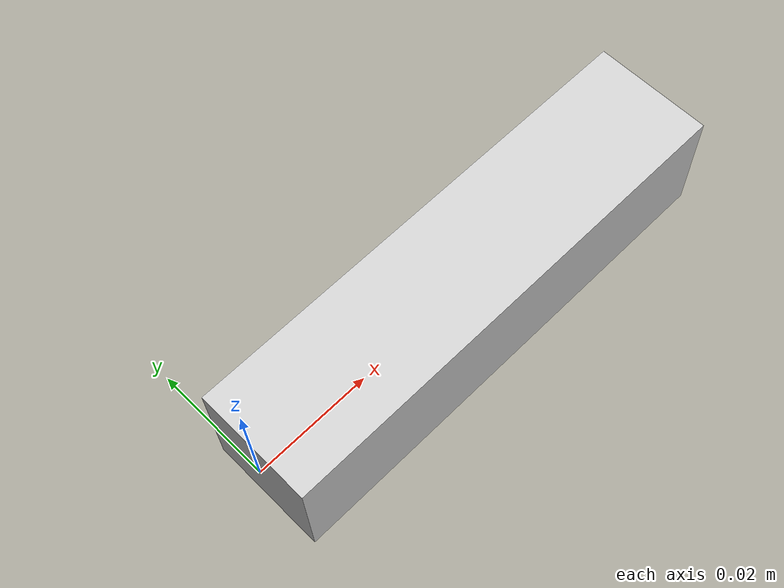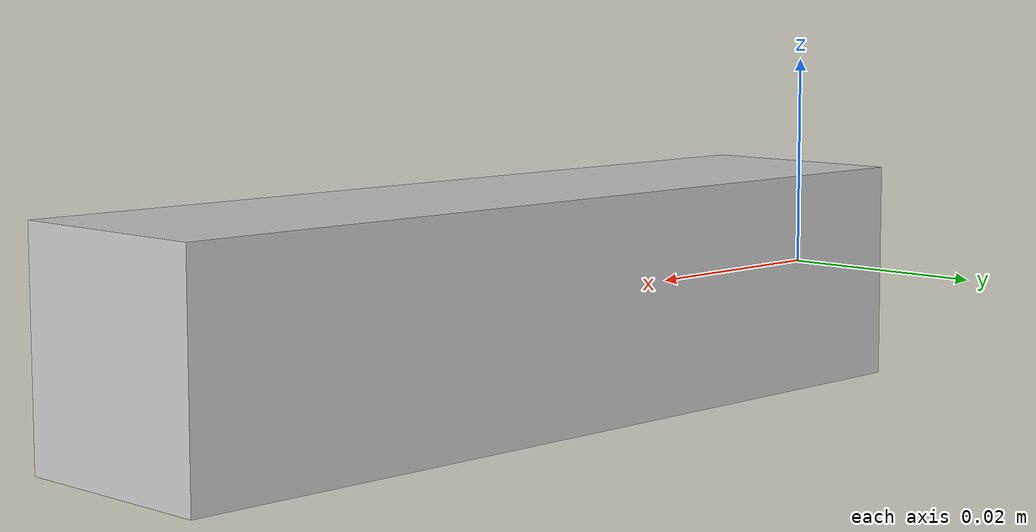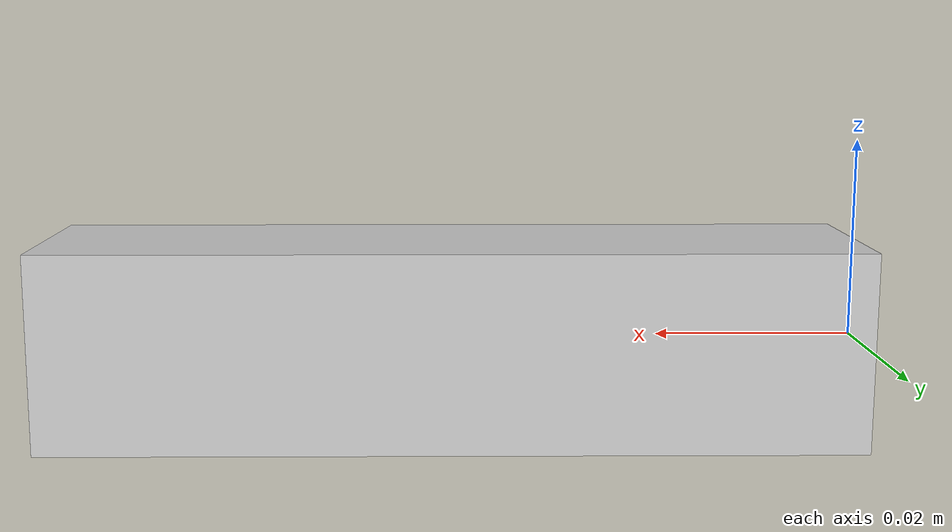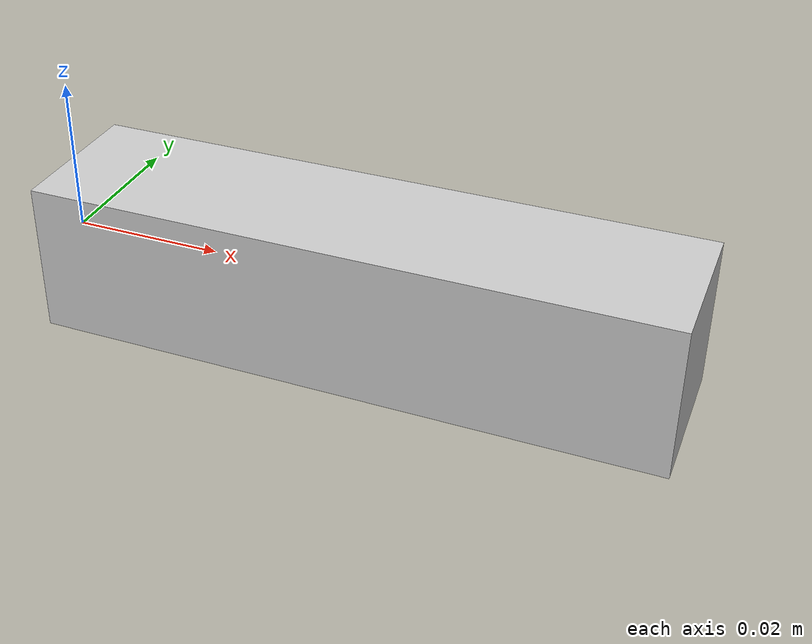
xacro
<?xml version="1.0"?>

<robot name="cepheus" xmlns:xacro="http://www.ros.org/wiki/xacro">
	<xacro:include filename="$(find cepheus_description)/urdf/cepheus.gazebo" />
	<xacro:include filename="$(find cepheus_description)/urdf/materials.xacro" />
	<xacro:include filename="$(find cepheus_description)/urdf/inertial_macros.xacro"/>
	<xacro:property name="camera_link" value="0.05" /> <!-- Size of square 'camera' box -->
	<xacro:property name="base_radius" value="0.2" />
	<xacro:property name="y" value="0.02" />
	<!-- gia sygkrish me simscape 29/7 -->
	<xacro:property name="arm_length" value="0.37" />
	<xacro:property name="forearm_length" value="0.368" />
	<xacro:property name="gripper_length" value="0.0822" />
	<xacro:property name="base_mass" value="53" />
	<xacro:property name="arm_mass" value="0.2314" />
	<xacro:property name="forearm_mass" value="0.1" />
	<xacro:property name="gripper_mass" value="4.6" />
	<xacro:property name="base_inertia" value="1.06" />
	<xacro:property name="arm_inertia" value="0.0026476" />
	<xacro:property name="forearm_inertia" value="0.0011318" />
	<xacro:property name="gripper_inertia" value="${2.73/1000}" />
	<xacro:property name="joint_damping" value="1" />
	<xacro:property name="joint_friction" value="1" />
	<xacro:property name="joint_limit" value="3.14" />
	<xacro:property name="joint_velocity" value="100000" />
	<xacro:property name="joint_effort" value="100000" />

	<!-- gia test epitagynshs: need fixing -->

	<link name="world">
	</link>
    	<joint name="p1_joint" type="prismatic">
		<parent link="world"/>
		<child link="p1"/>
		<axis xyz="1 0 0"/>
		<limit lower="-100" upper="100" effort="${joint_effort}" velocity="${joint_velocity}"/>
		<dynamics damping="${joint_damping}" friction="${joint_friction}"/>
	</joint>
	<link name="p1">
		<inertial>
			<origin
				xyz="0.0 0.0 0.0"
				rpy="0.0 0.0 0.0" />
			<mass value="0.01" />
			<inertia
				ixx="1e-2"
				ixy="0.000001"
				ixz="0.000001"
				iyy="1e-2"
				iyz="0.000001"
				izz="1e-2" />
		</inertial>
	</link>
	<gazebo reference="p1">
		<mu1>0</mu1>
		<mu2>0</mu2>
	</gazebo>
	<transmission name="lin1">
		<type>transmission_interface/SimpleTransmission</type>
		<joint name="p1_joint">
			<hardwareInterface>hardware_interface/EffortJointInterface</hardwareInterface>
		</joint>
		<actuator name="lin_motor1">
			<hardwareInterface>hardware_interface/EffortJointInterface</hardwareInterface>
			<mechanicalReduction>1</mechanicalReduction>
		</actuator>
	</transmission>
	<joint name="p2_joint" type="prismatic">
		<parent link="p1"/>
		<child link="p2"/>
		<axis xyz="0 1 0"/>
		<limit
			lower="-100"
			upper="100"
			effort="${joint_effort}"
			velocity="${joint_velocity}"/>
		<dynamics
			damping="${joint_damping}"
			friction="${joint_friction}"/>
	</joint>
	<link name="p2">
		<inertial>
			<origin
				xyz="0.0 0.0 0.0"
				rpy="0.0 0.0 0.0" />
			<mass value="0.01" />
			<inertia
				ixx="1e-2"
				ixy="0.000001"
				ixz="0.000001"
				iyy="1e-2"
				iyz="0.000001"
				izz="1e-2" />
		</inertial>
		<surface>
			<friction>
				<ode>
					<mu>0</mu>
					<mu2>0</mu2>
					<fdir1>0 1.0 0</fdir1>
					<implicit_spring_damper>true</implicit_spring_damper>
				</ode>
			</friction>
		</surface>
	</link>
	<gazebo reference="p2">
		<mu1>0</mu1>
		<mu2>0</mu2>
	</gazebo>
	<transmission name="lin2">
		<type>transmission_interface/SimpleTransmission</type>
		<joint name="p2_joint">
			<hardwareInterface>hardware_interface/EffortJointInterface</hardwareInterface>
		</joint>
		<actuator name="lin_motor2">
			<hardwareInterface>hardware_interface/EffortJointInterface</hardwareInterface>
			<mechanicalReduction>1</mechanicalReduction>
		</actuator>
	</transmission>
	<joint name="left_wrist_joint" type="continuous">
		<axis xyz="0 0 1"/>
		<parent link="p2"/>
		<origin rpy="0 0 0" xyz="0 0 0"/>
		<child link="left_grip"/>
		<dynamics damping="${joint_damping}" friction="${joint_friction}"/>
	</joint>
	<transmission name="tran1">
		<type>
			transmission_interface/SimpleTransmission</type>
		<joint name="left_wrist_joint">
			<hardwareInterface>hardware_interface/EffortJointInterface</hardwareInterface>
		</joint>
		<actuator name="motor1">
			<hardwareInterface>hardware_interface/EffortJointInterface</hardwareInterface>
			<mechanicalReduction>1</mechanicalReduction>
		</actuator>
	</transmission>

	<link name="left_grip">
		<inertial>
			<origin
				xyz="${gripper_length/2} 0 0"
				rpy="0 0 0" />
			<mass value="${gripper_mass}" />
			<inertia
				ixx="0.0001"
				ixy="0.0001"
				ixz="0.0001"
				iyy="0.0001"
				iyz="0.0001"
				izz="${gripper_inertia}" />
		</inertial>
		<visual>
			<origin
				xyz="${gripper_length/2} 0 0"
				rpy="0 0 0" />
			<geometry>
				<box size="${gripper_length} 0.02 0.02"/>
			</geometry>
			<material name="LightGrey"/>
		</visual>
		<collision>
			<origin
				xyz="${gripper_length/2} 0 0"
				rpy="0 0 0" />
			<geometry>
				<box size="${gripper_length} 0.02 0.02"/>
			</geometry>
		</collision>
	</link>
    <gazebo reference="left_grip">
		<mu1>0</mu1>
		<mu2>0</mu2>
	</gazebo>
	<joint name="final_joint" type="revolute">
		<parent link="left_grip"/>
		<child link="final_link"/>
		<origin
			xyz="${gripper_length} 0 0"
			rpy="0 0 0 " />
		<axis xyz="0 1 0"/>
		<limit lower="-1" upper="1" effort="${joint_effort}" velocity="${joint_velocity}"/>
		<dynamics damping="1" friction="1"/>
	</joint>
	<link name="final_link">
		<inertial>
			<origin
				xyz="0.0 0.0 0.0"
				rpy="0.0 0.0 0.0" />
			<mass value="0.0001" />
			<inertia
				ixx="1e-7"
				ixy="0.00001"
				ixz="0.00001"
				iyy="1e-7"
				iyz="0.00001"
				izz="1e-7" />
		</inertial>
	</link>

	<transmission name="tran4">
		<type>transmission_interface/SimpleTransmission</type>
		<joint name="left_wrist_joint">
			<hardwareInterface>hardware_interface/EffortJointInterface</hardwareInterface>
		</joint>
		<actuator name="motor4">
			<hardwareInterface>hardware_interface/EffortJointInterface</hardwareInterface>
			<mechanicalReduction>1</mechanicalReduction>
		</actuator>
	</transmission>
	<gazebo reference="left_wrist_joint">
		<provideFeedback>true</provideFeedback>
	</gazebo>
    <gazebo>
		<plugin name="ft_sensor" filename="libgazebo_ros_ft_sensor.so">
			<updateRate>0</updateRate>   <!--poly shmantiko na einai 0, allios kanei bug!!!!(nikhforos)-->
			<topicName>ft_sensor_topic</topicName>
			<jointName>left_wrist_joint</jointName>
			<noise>
          		<type>gaussian</type>
          		<mean>0.0</mean>
          		<stddev>0.0003</stddev> <!-- change this to simulate noise -->
        	</noise>
		</plugin>
	</gazebo>

	<gazebo reference="left_grip">
		<sensor name="imu_sensor" type="imu">
			<always_on>true</always_on>
			<update_rate>100</update_rate>
			<visualize>true</visualize>
			<topic>imu_sensor_topic</topic>
			<plugin filename="libgazebo_ros_imu_sensor.so" name="imu_plugin">
				<topicName>imu</topicName>
				<bodyName>left_grip</bodyName>
				<updateRateHZ>10.0</updateRateHZ>
				<gaussianNoise>0.0</gaussianNoise>
				<xyzOffset>0 0 0</xyzOffset>
				<rpyOffset>0 0 0</rpyOffset>
				<frameName>left_grip</frameName>
				<initialOrientationAsReference>false</initialOrientationAsReference>
			</plugin>
		</sensor>
  </gazebo>

</robot>
